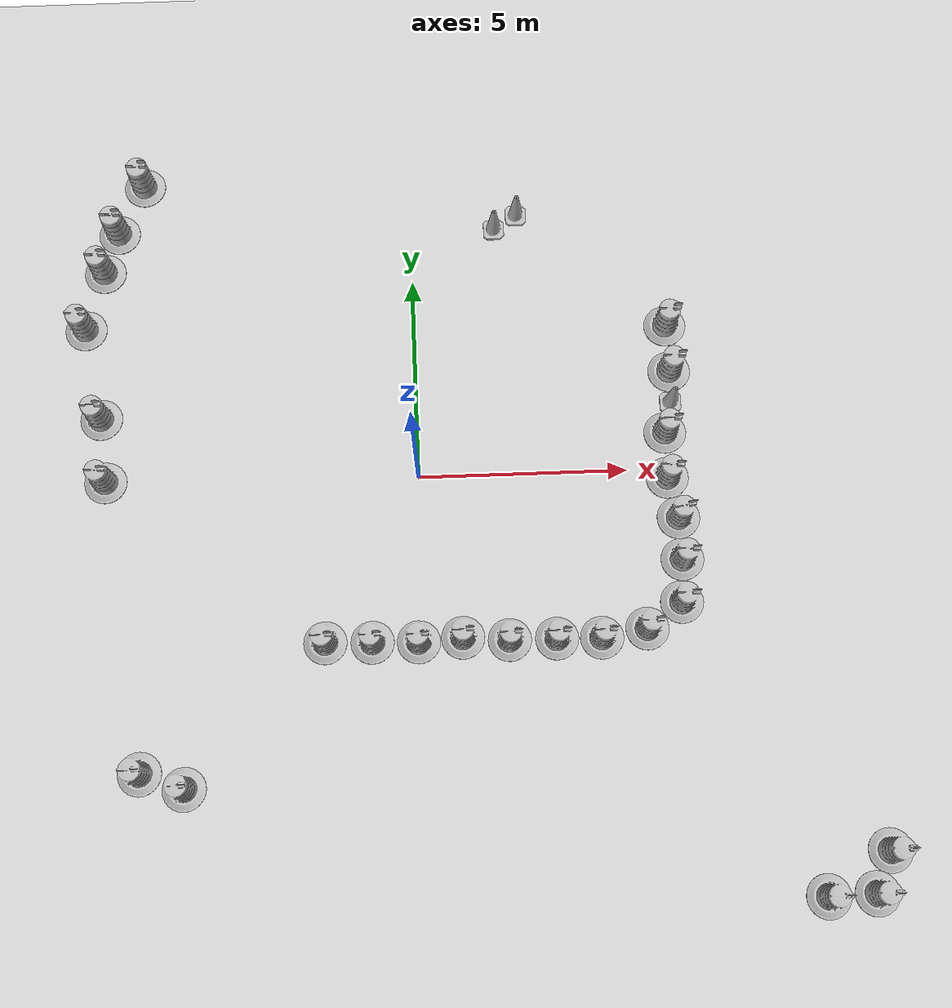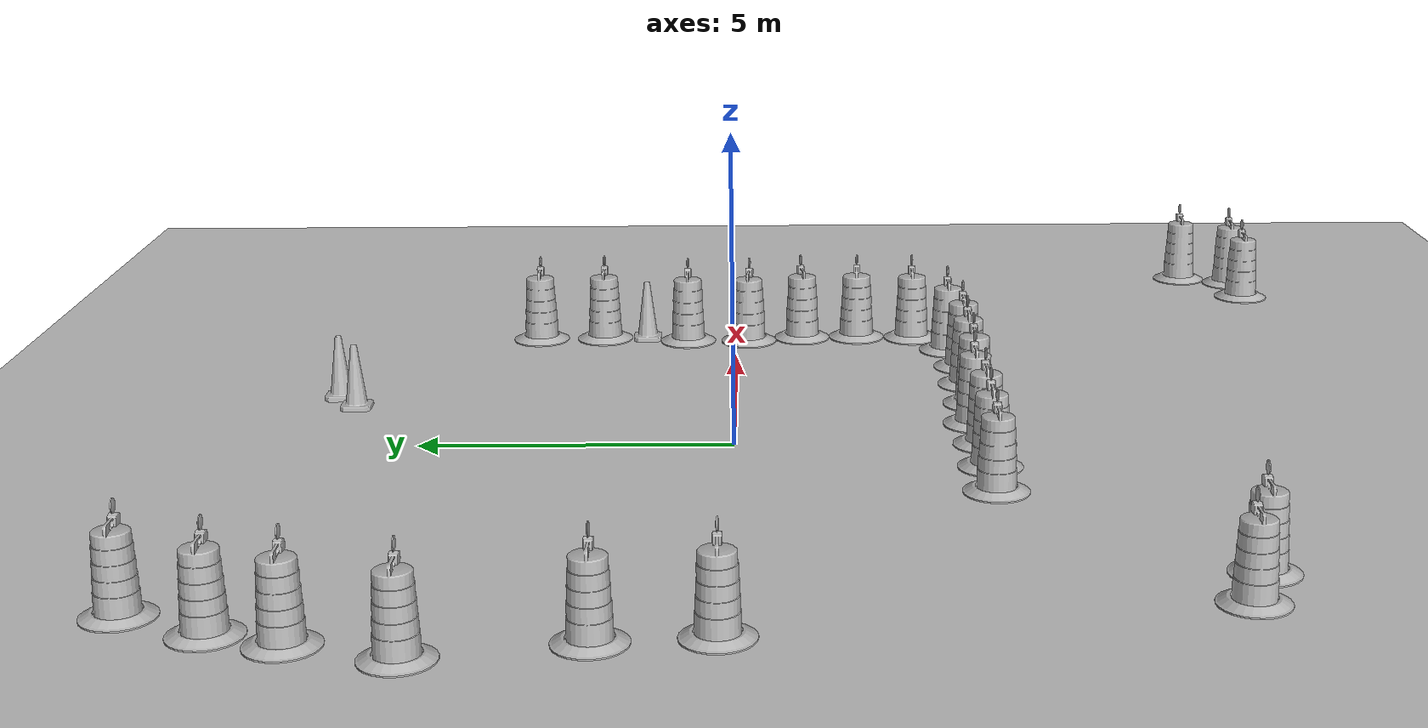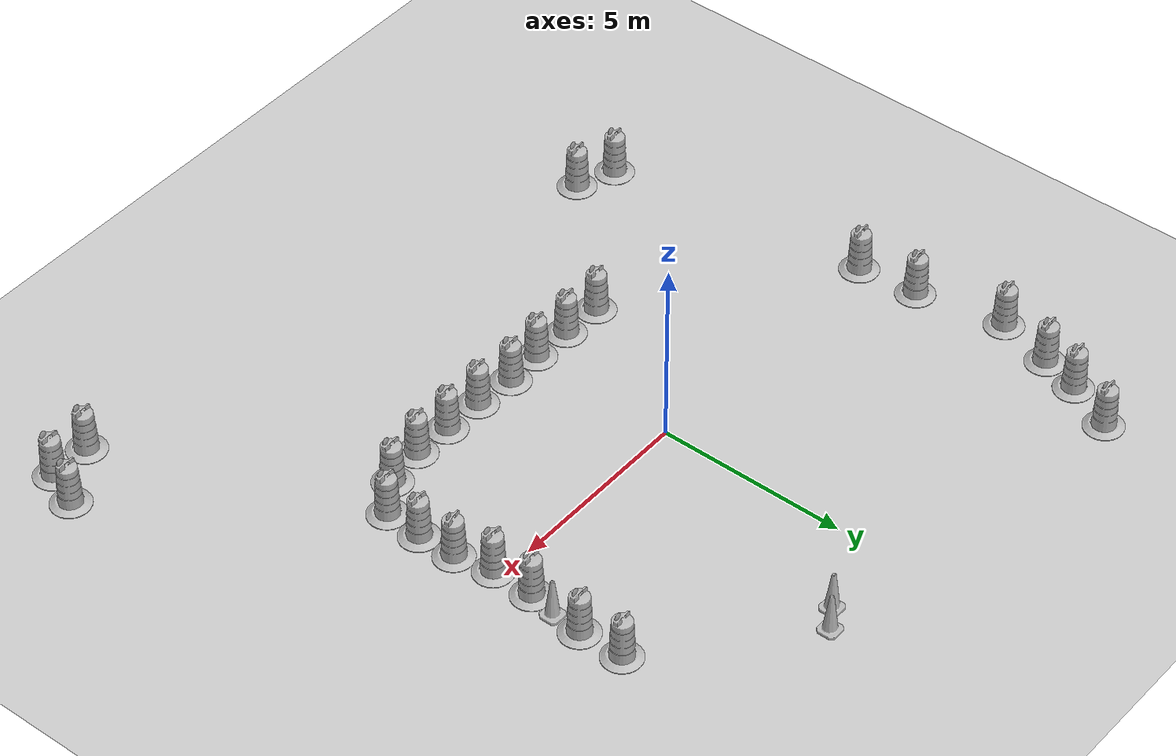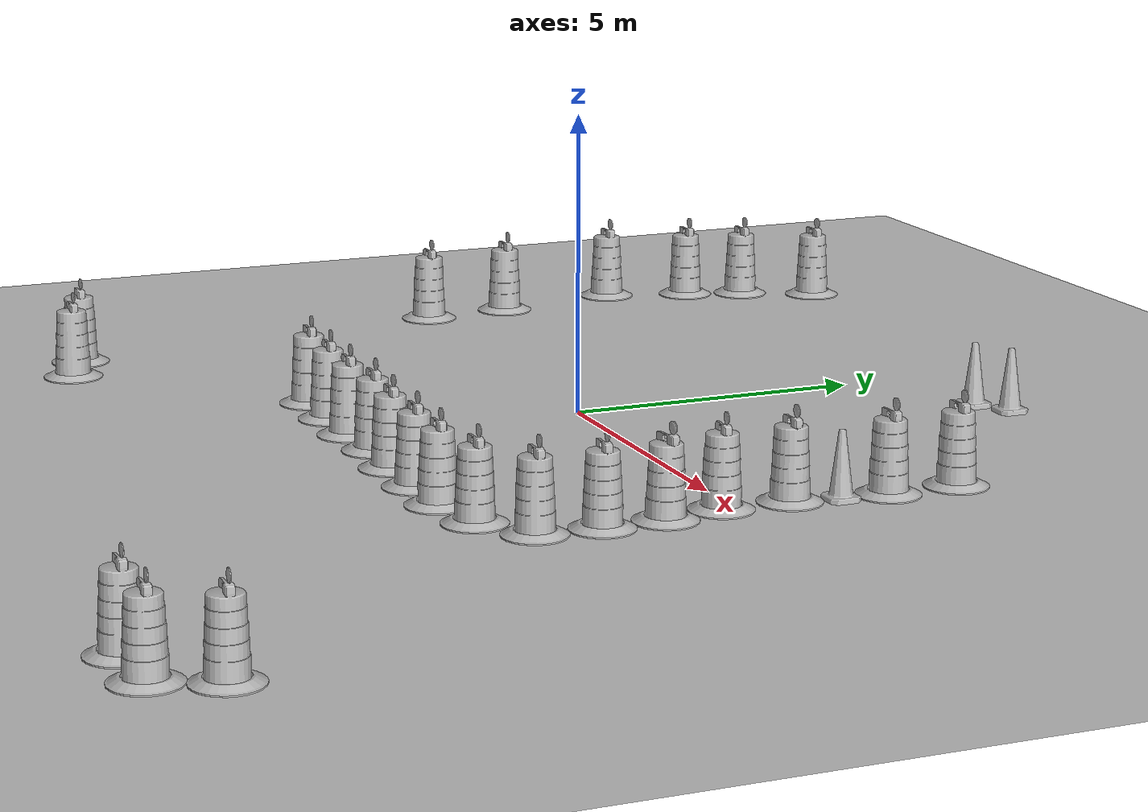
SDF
<sdf version="1.7">
 <world name="default">
  <light name="sun" type="directional">
   <pose>0 0 10 0 -0 0</pose>
   <diffuse>0.8 0.8 0.8 1</diffuse>
   <specular>0.2 0.2 0.2 1</specular>
   <attenuation>
    <range>1000</range>
    <constant>0.9</constant>
    <linear>0.01</linear>
    <quadratic>0.001</quadratic>
   </attenuation>
   <direction>-0.5 0.1 -0.9</direction>
   <spot><inner_angle>0</inner_angle><outer_angle>0</outer_angle><falloff>0</falloff></spot>
  </light>
  <model name="ground_plane">
   <static>1</static>
   <link name="link">
    <collision name="collision">
     <geometry><plane><normal>0 0 1</normal><size>100 100</size></plane></geometry>
     <surface>
      <contact><collide_bitmask>65535</collide_bitmask></contact>
      <friction><ode><mu>100</mu><mu2>50</mu2></ode></friction>
     </surface>
    </collision>
    <visual name="visual">
     <cast_shadows>0</cast_shadows>
     <geometry><plane><normal>0 0 1</normal><size>100 100</size></plane></geometry>
     <material>
      <script><uri>file://media/materials/scripts/gazebo.material</uri><name>Gazebo/Grey</name></script>
     </material>
    </visual>
   </link>
  </model>
  <gravity>0 0 -9.8</gravity>
  <magnetic_field>6e-06 2.3e-05 -4.2e-05</magnetic_field>
  <atmosphere type="adiabatic"/>
  <physics type="ode">
   <max_step_size>0.001</max_step_size>
   <real_time_factor>1</real_time_factor>
   <real_time_update_rate>1000</real_time_update_rate>
  </physics>
  <scene><ambient>0.4 0.4 0.4 1</ambient><background>0.7 0.7 0.7 1</background><shadows>1</shadows></scene>
  <spherical_coordinates>
   <surface_model>EARTH_WGS84</surface_model>
   <latitude_deg>0</latitude_deg>
   <longitude_deg>0</longitude_deg>
   <elevation>0</elevation>
   <heading_deg>0</heading_deg>
  </spherical_coordinates>
  <model name="Construction Barrel">
   <link name="link">
    <inertial>
     <pose>0 0 0.4 0 -0 0</pose>
     <mass>500</mass>
     <inertia><ixx>51.2096</ixx><iyy>51.2096</iyy><izz>25</izz><ixy>0</ixy><ixz>0</ixz><iyz>0</iyz></inertia>
    </inertial>
    <collision name="collision">
     <geometry><mesh><uri>model://construction_barrel/meshes/construction_barrel.dae</uri></mesh></geometry>
    </collision>
    <visual name="visual">
     <geometry><mesh><uri>model://construction_barrel/meshes/construction_barrel.dae</uri></mesh></geometry>
    </visual>
   </link>
   <pose>-7.59634 5.51968 1e-06 3e-06 2e-06 -4e-05</pose>
  </model>
  <model name="Construction Barrel_0">
   <link name="link">
    <inertial>
     <pose>0 0 0.4 0 -0 0</pose>
     <mass>500</mass>
     <inertia><ixx>51.2096</ixx><iyy>51.2096</iyy><izz>25</izz><ixy>0</ixy><ixz>0</ixz><iyz>0</iyz></inertia>
    </inertial>
    <collision name="collision">
     <geometry><mesh><uri>model://construction_barrel/meshes/construction_barrel.dae</uri></mesh></geometry>
    </collision>
    <visual name="visual">
     <geometry><mesh><uri>model://construction_barrel/meshes/construction_barrel.dae</uri></mesh></geometry>
    </visual>
   </link>
   <pose>-8.03803 4.03392 1e-06 3e-06 2e-06 -3.9e-05</pose>
  </model>
  <model name="Construction Barrel_1">
   <link name="link">
    <inertial>
     <pose>0 0 0.4 0 -0 0</pose>
     <mass>500</mass>
     <inertia><ixx>51.2096</ixx><iyy>51.2096</iyy><izz>25</izz><ixy>0</ixy><ixz>0</ixz><iyz>0</iyz></inertia>
    </inertial>
    <collision name="collision">
     <geometry><mesh><uri>model://construction_barrel/meshes/construction_barrel.dae</uri></mesh></geometry>
    </collision>
    <visual name="visual">
     <geometry><mesh><uri>model://construction_barrel/meshes/construction_barrel.dae</uri></mesh></geometry>
    </visual>
   </link>
   <pose>-7.61407 1.72222 1e-06 3e-06 2e-06 -3.8e-05</pose>
  </model>
  <model name="Construction Barrel_2">
   <link name="link">
    <inertial>
     <pose>0 0 0.4 0 -0 0</pose>
     <mass>500</mass>
     <inertia><ixx>51.2096</ixx><iyy>51.2096</iyy><izz>25</izz><ixy>0</ixy><ixz>0</ixz><iyz>0</iyz></inertia>
    </inertial>
    <collision name="collision">
     <geometry><mesh><uri>model://construction_barrel/meshes/construction_barrel.dae</uri></mesh></geometry>
    </collision>
    <visual name="visual">
     <geometry><mesh><uri>model://construction_barrel/meshes/construction_barrel.dae</uri></mesh></geometry>
    </visual>
   </link>
   <pose>-7.4817 0.136706 1e-06 3e-06 2e-06 -3.7e-05</pose>
  </model>
  <model name="Construction Barrel_3">
   <link name="link">
    <inertial>
     <pose>0 0 0.4 0 -0 0</pose>
     <mass>500</mass>
     <inertia><ixx>51.2096</ixx><iyy>51.2096</iyy><izz>25</izz><ixy>0</ixy><ixz>0</ixz><iyz>0</iyz></inertia>
    </inertial>
    <collision name="collision">
     <geometry><mesh><uri>model://construction_barrel/meshes/construction_barrel.dae</uri></mesh></geometry>
    </collision>
    <visual name="visual">
     <geometry><mesh><uri>model://construction_barrel/meshes/construction_barrel.dae</uri></mesh></geometry>
    </visual>
   </link>
   <pose>-7.26225 6.54936 1e-06 3e-06 2e-06 -3.5e-05</pose>
  </model>
  <model name="Construction Barrel_4">
   <link name="link">
    <inertial>
     <pose>0 0 0.4 0 -0 0</pose>
     <mass>500</mass>
     <inertia><ixx>51.2096</ixx><iyy>51.2096</iyy><izz>25</izz><ixy>0</ixy><ixz>0</ixz><iyz>0</iyz></inertia>
    </inertial>
    <collision name="collision">
     <geometry><mesh><uri>model://construction_barrel/meshes/construction_barrel.dae</uri></mesh></geometry>
    </collision>
    <visual name="visual">
     <geometry><mesh><uri>model://construction_barrel/meshes/construction_barrel.dae</uri></mesh></geometry>
    </visual>
   </link>
   <pose>-6.64792 7.80542 1e-06 3e-06 2e-06 -3.4e-05</pose>
  </model>
  <model name="Construction Cone">
   <link name="link">
    <collision name="collision">
     <geometry>
      <mesh><scale>10 10 10</scale><uri>model://construction_cone/meshes/construction_cone.dae</uri></mesh>
     </geometry>
    </collision>
    <visual name="visual">
     <geometry>
      <mesh><scale>10 10 10</scale><uri>model://construction_cone/meshes/construction_cone.dae</uri></mesh>
     </geometry>
    </visual>
    <inertial>
     <inertia><ixx>1</ixx><ixy>0</ixy><ixz>0</ixz><iyy>1</iyy><iyz>0</iyz><izz>1</izz></inertia>
     <mass>1</mass>
    </inertial>
   </link>
   <pose>2.61648 6.69852 0 -0 -0 -0</pose>
  </model>
  <model name="Construction Cone_0">
   <link name="link">
    <collision name="collision">
     <geometry>
      <mesh><scale>10 10 10</scale><uri>model://construction_cone/meshes/construction_cone.dae</uri></mesh>
     </geometry>
    </collision>
    <visual name="visual">
     <geometry>
      <mesh><scale>10 10 10</scale><uri>model://construction_cone/meshes/construction_cone.dae</uri></mesh>
     </geometry>
    </visual>
    <inertial>
     <inertia><ixx>1</ixx><ixy>0</ixy><ixz>0</ixz><iyy>1</iyy><iyz>0</iyz><izz>1</izz></inertia>
     <mass>1</mass>
    </inertial>
   </link>
   <pose>2.05573 6.33777 -0 0 -0 0</pose>
  </model>
  <model name="Construction Barrel_5">
   <link name="link">
    <inertial>
     <pose>0 0 0.4 0 -0 0</pose>
     <mass>500</mass>
     <inertia><ixx>51.2096</ixx><iyy>51.2096</iyy><izz>25</izz><ixy>0</ixy><ixz>0</ixz><iyz>0</iyz></inertia>
    </inertial>
    <collision name="collision">
     <geometry><mesh><uri>model://construction_barrel/meshes/construction_barrel.dae</uri></mesh></geometry>
    </collision>
    <visual name="visual">
     <geometry><mesh><uri>model://construction_barrel/meshes/construction_barrel.dae</uri></mesh></geometry>
    </visual>
   </link>
   <pose>6.14966 3.63165 1e-06 3e-06 2e-06 -3.1e-05</pose>
  </model>
  <model name="Construction Barrel_6">
   <link name="link">
    <inertial>
     <pose>0 0 0.4 0 -0 0</pose>
     <mass>500</mass>
     <inertia><ixx>51.2096</ixx><iyy>51.2096</iyy><izz>25</izz><ixy>0</ixy><ixz>0</ixz><iyz>0</iyz></inertia>
    </inertial>
    <collision name="collision">
     <geometry><mesh><uri>model://construction_barrel/meshes/construction_barrel.dae</uri></mesh></geometry>
    </collision>
    <visual name="visual">
     <geometry><mesh><uri>model://construction_barrel/meshes/construction_barrel.dae</uri></mesh></geometry>
    </visual>
   </link>
   <pose>6.17604 2.45097 1e-06 3e-06 2e-06 -2.9e-05</pose>
  </model>
  <model name="Construction Cone_1">
   <link name="link">
    <collision name="collision">
     <geometry>
      <mesh><scale>10 10 10</scale><uri>model://construction_cone/meshes/construction_cone.dae</uri></mesh>
     </geometry>
    </collision>
    <visual name="visual">
     <geometry>
      <mesh><scale>10 10 10</scale><uri>model://construction_cone/meshes/construction_cone.dae</uri></mesh>
     </geometry>
    </visual>
    <inertial>
     <inertia><ixx>1</ixx><ixy>0</ixy><ixz>0</ixz><iyy>1</iyy><iyz>0</iyz><izz>1</izz></inertia>
     <mass>1</mass>
    </inertial>
   </link>
   <pose>6.15339 1.65808 -0 0 -0 0.001481</pose>
  </model>
  <model name="Construction Barrel_7">
   <link name="link">
    <inertial>
     <pose>0 0 0.4 0 -0 0</pose>
     <mass>500</mass>
     <inertia><ixx>51.2096</ixx><iyy>51.2096</iyy><izz>25</izz><ixy>0</ixy><ixz>0</ixz><iyz>0</iyz></inertia>
    </inertial>
    <collision name="collision">
     <geometry><mesh><uri>model://construction_barrel/meshes/construction_barrel.dae</uri></mesh></geometry>
    </collision>
    <visual name="visual">
     <geometry><mesh><uri>model://construction_barrel/meshes/construction_barrel.dae</uri></mesh></geometry>
    </visual>
   </link>
   <pose>5.97255 0.897378 -2e-06 -5e-06 -4e-06 -0.004685</pose>
  </model>
  <model name="Construction Barrel_8">
   <link name="link">
    <inertial>
     <pose>0 0 0.4 0 -0 0</pose>
     <mass>500</mass>
     <inertia><ixx>51.2096</ixx><iyy>51.2096</iyy><izz>25</izz><ixy>0</ixy><ixz>0</ixz><iyz>0</iyz></inertia>
    </inertial>
    <collision name="collision">
     <geometry><mesh><uri>model://construction_barrel/meshes/construction_barrel.dae</uri></mesh></geometry>
    </collision>
    <visual name="visual">
     <geometry><mesh><uri>model://construction_barrel/meshes/construction_barrel.dae</uri></mesh></geometry>
    </visual>
   </link>
   <pose>5.95564 -0.228229 -2e-06 -7e-06 -4e-06 -0.09186</pose>
  </model>
  <model name="Construction Barrel_9">
   <link name="link">
    <inertial>
     <pose>0 0 0.4 0 -0 0</pose>
     <mass>500</mass>
     <inertia><ixx>51.2096</ixx><iyy>51.2096</iyy><izz>25</izz><ixy>0</ixy><ixz>0</ixz><iyz>0</iyz></inertia>
    </inertial>
    <collision name="collision">
     <geometry><mesh><uri>model://construction_barrel/meshes/construction_barrel.dae</uri></mesh></geometry>
    </collision>
    <visual name="visual">
     <geometry><mesh><uri>model://construction_barrel/meshes/construction_barrel.dae</uri></mesh></geometry>
    </visual>
   </link>
   <pose>6.1557 -1.22428 -0 0 -0 0.153027</pose>
  </model>
  <model name="Construction Barrel_10">
   <link name="link">
    <inertial>
     <pose>0 0 0.4 0 -0 0</pose>
     <mass>500</mass>
     <inertia><ixx>51.2096</ixx><iyy>51.2096</iyy><izz>25</izz><ixy>0</ixy><ixz>0</ixz><iyz>0</iyz></inertia>
    </inertial>
    <collision name="collision">
     <geometry><mesh><uri>model://construction_barrel/meshes/construction_barrel.dae</uri></mesh></geometry>
    </collision>
    <visual name="visual">
     <geometry><mesh><uri>model://construction_barrel/meshes/construction_barrel.dae</uri></mesh></geometry>
    </visual>
   </link>
   <pose>6.1777 -2.23878 -2e-06 -9e-06 -1e-06 -0.048922</pose>
  </model>
  <model name="Construction Barrel_11">
   <link name="link">
    <inertial>
     <pose>0 0 0.4 0 -0 0</pose>
     <mass>500</mass>
     <inertia><ixx>51.2096</ixx><iyy>51.2096</iyy><izz>25</izz><ixy>0</ixy><ixz>0</ixz><iyz>0</iyz></inertia>
    </inertial>
    <collision name="collision">
     <geometry><mesh><uri>model://construction_barrel/meshes/construction_barrel.dae</uri></mesh></geometry>
    </collision>
    <visual name="visual">
     <geometry><mesh><uri>model://construction_barrel/meshes/construction_barrel.dae</uri></mesh></geometry>
    </visual>
   </link>
   <pose>6.0976 -3.26301 1e-06 4e-06 2e-06 -0.021142</pose>
  </model>
  <model name="Construction Barrel_12">
   <link name="link">
    <inertial>
     <pose>0 0 0.4 0 -0 0</pose>
     <mass>500</mass>
     <inertia><ixx>51.2096</ixx><iyy>51.2096</iyy><izz>25</izz><ixy>0</ixy><ixz>0</ixz><iyz>0</iyz></inertia>
    </inertial>
    <collision name="collision">
     <geometry><mesh><uri>model://construction_barrel/meshes/construction_barrel.dae</uri></mesh></geometry>
    </collision>
    <visual name="visual">
     <geometry><mesh><uri>model://construction_barrel/meshes/construction_barrel.dae</uri></mesh></geometry>
    </visual>
   </link>
   <pose>5.24583 -3.8598 1e-06 3e-06 2e-06 -2.1e-05</pose>
  </model>
  <model name="Construction Barrel_13">
   <link name="link">
    <inertial>
     <pose>0 0 0.4 0 -0 0</pose>
     <mass>500</mass>
     <inertia><ixx>51.2096</ixx><iyy>51.2096</iyy><izz>25</izz><ixy>0</ixy><ixz>0</ixz><iyz>0</iyz></inertia>
    </inertial>
    <collision name="collision">
     <geometry><mesh><uri>model://construction_barrel/meshes/construction_barrel.dae</uri></mesh></geometry>
    </collision>
    <visual name="visual">
     <geometry><mesh><uri>model://construction_barrel/meshes/construction_barrel.dae</uri></mesh></geometry>
    </visual>
   </link>
   <pose>4.17381 -4.0365 1e-06 3e-06 2e-06 -2e-05</pose>
  </model>
  <model name="Construction Barrel_14">
   <link name="link">
    <inertial>
     <pose>0 0 0.4 0 -0 0</pose>
     <mass>500</mass>
     <inertia><ixx>51.2096</ixx><iyy>51.2096</iyy><izz>25</izz><ixy>0</ixy><ixz>0</ixz><iyz>0</iyz></inertia>
    </inertial>
    <collision name="collision">
     <geometry><mesh><uri>model://construction_barrel/meshes/construction_barrel.dae</uri></mesh></geometry>
    </collision>
    <visual name="visual">
     <geometry><mesh><uri>model://construction_barrel/meshes/construction_barrel.dae</uri></mesh></geometry>
    </visual>
   </link>
   <pose>3.12153 -4.01762 -0 0 0 -1.8e-05</pose>
  </model>
  <model name="Construction Barrel_15">
   <link name="link">
    <inertial>
     <pose>0 0 0.4 0 -0 0</pose>
     <mass>500</mass>
     <inertia><ixx>51.2096</ixx><iyy>51.2096</iyy><izz>25</izz><ixy>0</ixy><ixz>0</ixz><iyz>0</iyz></inertia>
    </inertial>
    <collision name="collision">
     <geometry><mesh><uri>model://construction_barrel/meshes/construction_barrel.dae</uri></mesh></geometry>
    </collision>
    <visual name="visual">
     <geometry><mesh><uri>model://construction_barrel/meshes/construction_barrel.dae</uri></mesh></geometry>
    </visual>
   </link>
   <pose>2.01919 -4.01087 -2e-06 8e-06 -4e-06 -1.7e-05</pose>
  </model>
  <model name="Construction Barrel_16">
   <link name="link">
    <inertial>
     <pose>0 0 0.4 0 -0 0</pose>
     <mass>500</mass>
     <inertia><ixx>51.2096</ixx><iyy>51.2096</iyy><izz>25</izz><ixy>0</ixy><ixz>0</ixz><iyz>0</iyz></inertia>
    </inertial>
    <collision name="collision">
     <geometry><mesh><uri>model://construction_barrel/meshes/construction_barrel.dae</uri></mesh></geometry>
    </collision>
    <visual name="visual">
     <geometry><mesh><uri>model://construction_barrel/meshes/construction_barrel.dae</uri></mesh></geometry>
    </visual>
   </link>
   <pose>0.930332 -3.91785 -1e-06 3e-06 7e-06 -1.5e-05</pose>
  </model>
  <model name="Construction Barrel_17">
   <link name="link">
    <inertial>
     <pose>0 0 0.4 0 -0 0</pose>
     <mass>500</mass>
     <inertia><ixx>51.2096</ixx><iyy>51.2096</iyy><izz>25</izz><ixy>0</ixy><ixz>0</ixz><iyz>0</iyz></inertia>
    </inertial>
    <collision name="collision">
     <geometry><mesh><uri>model://construction_barrel/meshes/construction_barrel.dae</uri></mesh></geometry>
    </collision>
    <visual name="visual">
     <geometry><mesh><uri>model://construction_barrel/meshes/construction_barrel.dae</uri></mesh></geometry>
    </visual>
   </link>
   <pose>-0.102556 -3.9849 0 0 0 -1.5e-05</pose>
  </model>
  <model name="Construction Barrel_18">
   <link name="link">
    <inertial>
     <pose>0 0 0.4 0 -0 0</pose>
     <mass>500</mass>
     <inertia><ixx>51.2096</ixx><iyy>51.2096</iyy><izz>25</izz><ixy>0</ixy><ixz>0</ixz><iyz>0</iyz></inertia>
    </inertial>
    <collision name="collision">
     <geometry><mesh><uri>model://construction_barrel/meshes/construction_barrel.dae</uri></mesh></geometry>
    </collision>
    <visual name="visual">
     <geometry><mesh><uri>model://construction_barrel/meshes/construction_barrel.dae</uri></mesh></geometry>
    </visual>
   </link>
   <pose>-1.18255 -3.95602 -0 1e-06 -1e-06 -1.2e-05</pose>
  </model>
  <model name="Construction Barrel_19">
   <link name="link">
    <inertial>
     <pose>0 0 0.4 0 -0 0</pose>
     <mass>500</mass>
     <inertia><ixx>51.2096</ixx><iyy>51.2096</iyy><izz>25</izz><ixy>0</ixy><ixz>0</ixz><iyz>0</iyz></inertia>
    </inertial>
    <collision name="collision">
     <geometry><mesh><uri>model://construction_barrel/meshes/construction_barrel.dae</uri></mesh></geometry>
    </collision>
    <visual name="visual">
     <geometry><mesh><uri>model://construction_barrel/meshes/construction_barrel.dae</uri></mesh></geometry>
    </visual>
   </link>
   <pose>-2.28434 -3.92751 -1e-06 0 5e-06 -1e-05</pose>
  </model>
  <model name="Construction Barrel_20">
   <link name="link">
    <inertial>
     <pose>0 0 0.4 0 -0 0</pose>
     <mass>500</mass>
     <inertia><ixx>51.2096</ixx><iyy>51.2096</iyy><izz>25</izz><ixy>0</ixy><ixz>0</ixz><iyz>0</iyz></inertia>
    </inertial>
    <collision name="collision">
     <geometry><mesh><uri>model://construction_barrel/meshes/construction_barrel.dae</uri></mesh></geometry>
    </collision>
    <visual name="visual">
     <geometry><mesh><uri>model://construction_barrel/meshes/construction_barrel.dae</uri></mesh></geometry>
    </visual>
   </link>
   <pose>-6.5696 -6.80107 -2e-06 -0 7e-06 -8e-06</pose>
  </model>
  <model name="Construction Barrel_21">
   <link name="link">
    <inertial>
     <pose>0 0 0.4 0 -0 0</pose>
     <mass>500</mass>
     <inertia><ixx>51.2096</ixx><iyy>51.2096</iyy><izz>25</izz><ixy>0</ixy><ixz>0</ixz><iyz>0</iyz></inertia>
    </inertial>
    <collision name="collision">
     <geometry><mesh><uri>model://construction_barrel/meshes/construction_barrel.dae</uri></mesh></geometry>
    </collision>
    <visual name="visual">
     <geometry><mesh><uri>model://construction_barrel/meshes/construction_barrel.dae</uri></mesh></geometry>
    </visual>
   </link>
   <pose>-5.54395 -7.18221 -1e-06 3e-06 1e-05 -7e-06</pose>
  </model>
  <model name="Construction Barrel_22">
   <link name="link">
    <inertial>
     <pose>0 0 0.4 0 -0 0</pose>
     <mass>500</mass>
     <inertia><ixx>51.2096</ixx><iyy>51.2096</iyy><izz>25</izz><ixy>0</ixy><ixz>0</ixz><iyz>0</iyz></inertia>
    </inertial>
    <collision name="collision">
     <geometry><mesh><uri>model://construction_barrel/meshes/construction_barrel.dae</uri></mesh></geometry>
    </collision>
    <visual name="visual">
     <geometry><mesh><uri>model://construction_barrel/meshes/construction_barrel.dae</uri></mesh></geometry>
    </visual>
   </link>
   <pose>10.014 -10.0611 -2e-06 -7e-06 -4e-06 -0.021032</pose>
  </model>
  <model name="Construction Barrel_23">
   <link name="link">
    <inertial>
     <pose>0 0 0.4 0 -0 0</pose>
     <mass>500</mass>
     <inertia><ixx>51.2096</ixx><iyy>51.2096</iyy><izz>25</izz><ixy>0</ixy><ixz>0</ixz><iyz>0</iyz></inertia>
    </inertial>
    <collision name="collision">
     <geometry><mesh><uri>model://construction_barrel/meshes/construction_barrel.dae</uri></mesh></geometry>
    </collision>
    <visual name="visual">
     <geometry><mesh><uri>model://construction_barrel/meshes/construction_barrel.dae</uri></mesh></geometry>
    </visual>
   </link>
   <pose>10.4027 -9.12581 -2e-06 8e-06 -4e-06 -0.02464</pose>
  </model>
  <model name="Construction Barrel_24">
   <link name="link">
    <inertial>
     <pose>0 0 0.4 0 -0 0</pose>
     <mass>500</mass>
     <inertia><ixx>51.2096</ixx><iyy>51.2096</iyy><izz>25</izz><ixy>0</ixy><ixz>0</ixz><iyz>0</iyz></inertia>
    </inertial>
    <collision name="collision">
     <geometry><mesh><uri>model://construction_barrel/meshes/construction_barrel.dae</uri></mesh></geometry>
    </collision>
    <visual name="visual">
     <geometry><mesh><uri>model://construction_barrel/meshes/construction_barrel.dae</uri></mesh></geometry>
    </visual>
   </link>
   <pose>8.91652 -10.0853 -1e-06 3e-06 -2e-06 -2e-06</pose>
  </model>
 </world>
</sdf>
